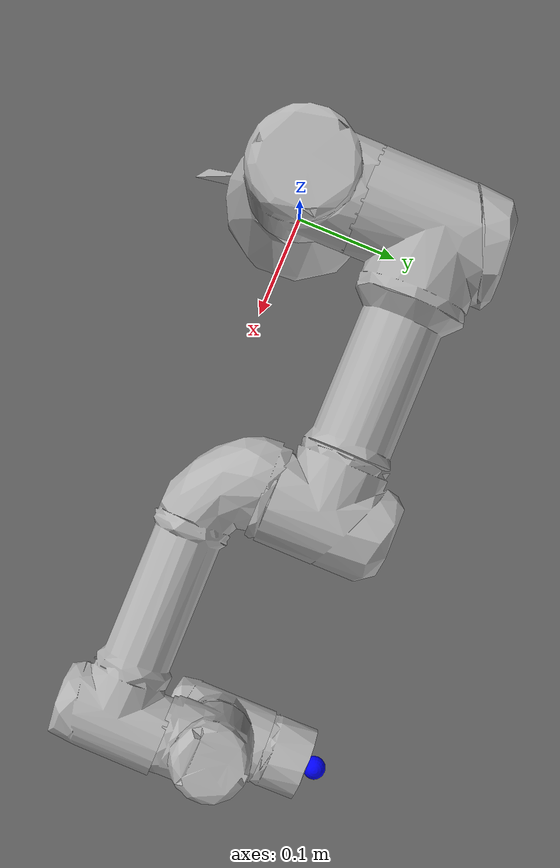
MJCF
<mujoco model="ur3_scene">

  <!-- implicitfast integrator is critical for stability with stiff actuators -->
  <option integrator="implicitfast" timestep="0.002" gravity="0 0 -9.81" />

  <compiler angle="radian" meshdir="ur_assets/meshes/ur3/collision/" eulerseq="zyx" autolimits="true" />

  <default>
    <!-- Joint defaults: armature simulates harmonic drive rotor inertia -->
    <joint limited="true" axis="0 1 0" range="-6.28319 6.28319" armature="0.1" />
    <!-- Large joints actuator: kp=2000, kv=400, max torque ±150 Nm -->
    <general gaintype="fixed" biastype="affine" ctrlrange="-6.2831 6.2831"
             gainprm="2000" biasprm="0 -2000 -400" forcerange="-150 150" />
    <geom condim="4" contype="1" conaffinity="15" friction="0.9 0.2 0.2" />
    <default class="size1">
      <!-- Wrist joints actuator: kp=500, kv=100, max torque ±28 Nm -->
      <general gainprm="500" biasprm="0 -500 -100" forcerange="-28 28" />
    </default>
    <default class="size3_limited">
      <joint range="-3.14159 3.14159" />
      <general ctrlrange="-3.1415 3.1415" />
    </default>
    <default class="visualgeom">
      <geom material="visualgeom" condim="1" contype="0" conaffinity="0" />
    </default>
  </default>

  <asset>
    <mesh name="base" content_type="model/stl" file="base.stl" />
    <mesh name="shoulder" content_type="model/stl" file="shoulder.stl" />
    <mesh name="upperarm" content_type="model/stl" file="upperarm.stl" />
    <mesh name="forearm" content_type="model/stl" file="forearm.stl" />
    <mesh name="wrist1" content_type="model/stl" file="wrist1.stl" />
    <mesh name="wrist2" content_type="model/stl" file="wrist2.stl" />
    <mesh name="wrist3" content_type="model/stl" file="wrist3.stl" />
    <texture name="texplane" type="2d" builtin="checker" rgb1=".0 .0 .0" rgb2=".8 .8 .8" width="100" height="100" />
    <material name="matplane" reflectance="0." texture="texplane" texrepeat="1 1" texuniform="true" />
    <material name="visualgeom" rgba="0.5 0.9 0.2 1" />
  </asset>

  <worldbody>
    <light directional="true" diffuse="0.4 0.4 0.4" specular="0.1 0.1 0.1" pos="0 0 5.0" dir="0 0 -1" castshadow="false" />
    <light directional="true" diffuse="0.6 0.6 0.6" specular="0.2 0.2 0.2" pos="0 0 4" dir="0 0 -1" />
    <geom name="ground" type="plane" pos="0 0 0" size="2 2 0.1" quat="1 0 0 0" material="matplane" condim="3" conaffinity="15" />

    <body name="target_visual" pos="0 0 0">
      <geom name="target_sphere" type="sphere" size="0.012" rgba="0.8 0.2 0.2 0.7" contype="0" conaffinity="0"/>
    </body>

    <camera name="fixed" pos="0 -1.5 0.8" xyaxes="1 0 0 0 0 1" />
    <camera name="track_cam" mode="targetbody" target="wrist_3_link" pos="0.8 -0.8 0.6" />

    <body name="root" pos="0 0 0.06487575362036854" quat="1 0 0 0">
      <site name="imu" size="0.01" pos="0 0 0" />
      <geom type="mesh" rgba="0.7 0.7 0.7 1" mesh="base" contype="1" conaffinity="0" density="0" group="1" class="visualgeom" />
      <geom type="mesh" rgba="0.7 0.7 0.7 1" mesh="base" />
      <body name="shoulder_link" pos="0 0 0.1519">
        <inertial pos="0 0 0" mass="2" diaginertia="0.00809316 0.00809316 0.005625" />
        <joint name="shoulder_pan_joint" pos="0 0 0" axis="0 0 1" range="-6.28319 6.28319" />
        <geom type="mesh" rgba="0.7 0.7 0.7 1" mesh="shoulder" contype="1" conaffinity="0" density="0" group="1" class="visualgeom" />
        <geom type="mesh" rgba="0.7 0.7 0.7 1" mesh="shoulder" />
        <body name="upper_arm_link" pos="0 0.1198 0" quat="0.707107 0 0.707107 0">
          <inertial pos="0 0 0.121825" mass="3.42" diaginertia="0.0217285 0.0217285 0.00961875" />
          <joint name="shoulder_lift_joint" pos="0 0 0" axis="0 1 0" range="-6.28319 6.28319" />
          <geom type="mesh" rgba="0.7 0.7 0.7 1" mesh="upperarm" contype="1" conaffinity="0" density="0" group="1" class="visualgeom" />
          <geom type="mesh" rgba="0.7 0.7 0.7 1" mesh="upperarm" />
          <body name="forearm_link" pos="0 -0.0925 0.24365">
            <inertial pos="0 0 0.106625" mass="1.26" diaginertia="0.00654681 0.00654681 0.00354375" />
            <joint name="elbow_joint" pos="0 0 0" axis="0 1 0" range="-3.14159 3.14159" />
            <geom type="mesh" rgba="0.7 0.7 0.7 1" mesh="forearm" contype="1" conaffinity="0" density="0" group="1" class="visualgeom" />
            <geom type="mesh" rgba="0.7 0.7 0.7 1" mesh="forearm" />
            <body name="wrist_1_link" pos="0 0 0.21325" quat="0.707107 0 0.707107 0">
              <inertial pos="0 0 0" quat="0.5 0.5 -0.5 0.5" mass="0.8" diaginertia="0.00225 0.002085 0.002085" />
              <joint name="wrist_1_joint" pos="0 0 0" axis="0 1 0" range="-6.28319 6.28319" />
              <geom type="mesh" rgba="0.7 0.7 0.7 1" mesh="wrist1" contype="1" conaffinity="0" density="0" group="1" class="visualgeom" />
              <geom type="mesh" rgba="0.7 0.7 0.7 1" mesh="wrist1" />
              <body name="wrist_2_link" pos="0 0.08505 0">
                <inertial pos="0 0 0" quat="0.5 0.5 -0.5 0.5" mass="0.8" diaginertia="0.00225 0.002085 0.002085" />
                <joint name="wrist_2_joint" pos="0 0 0" axis="0 0 1" range="-6.28319 6.28319" />
                <geom type="mesh" rgba="0.7 0.7 0.7 1" mesh="wrist2" contype="1" conaffinity="0" density="0" group="1" class="visualgeom" />
                <geom type="mesh" rgba="0.7 0.7 0.7 1" mesh="wrist2" />
                <body name="wrist_3_link" pos="0 0 0.08535">
                  <inertial pos="0 0 0" quat="0.5 0.5 -0.5 0.5" mass="0.35" diaginertia="0.000984375 0.000912187 0.000912187" />
                  <joint name="wrist_3_joint" pos="0 0 0" axis="0 1 0" range="-6.28319 6.28319" />
                  <geom type="mesh" rgba="0.7 0.7 0.7 1" mesh="wrist3" contype="1" conaffinity="0" density="0" group="1" class="visualgeom" />
                  <geom type="mesh" rgba="0.7 0.7 0.7 1" mesh="wrist3" />
                  <geom size="0.005 0.005 0.005" pos="0 0.0719 0" quat="0.707107 0 0 0.707107" type="box" contype="1" conaffinity="0" density="0" group="1" class="visualgeom" />
                  <geom type="box" rgba="0.5 0.5 0.5 1" size="0.005 0.005 0.005" pos="0 0.0719 0" quat="0.707107 0 0 0.707107" />

                  <site name="ee_site" pos="0 0.09 0" size="0.01" rgba="0 0 1 1"/>
                </body>
              </body>
            </body>
          </body>
        </body>
      </body>
    </body>
  </worldbody>

  <actuator>
    <!-- Large joints: shoulder + elbow (class defaults: kp=2000, kv=400, ±150 Nm) -->
    <general name="shoulder_pan"   joint="shoulder_pan_joint" />
    <general name="shoulder_lift"  joint="shoulder_lift_joint" />
    <general name="elbow"          joint="elbow_joint"         class="size3_limited" />
    <!-- Wrist joints (class size1: kp=500, kv=100, ±28 Nm) -->
    <general name="wrist_1"        joint="wrist_1_joint"       class="size1" />
    <general name="wrist_2"        joint="wrist_2_joint"       class="size1" />
    <general name="wrist_3"        joint="wrist_3_joint"       class="size1" />
  </actuator>

  <sensor>
    <actuatorpos name="shoulder_pan_joint_p" actuator="shoulder_pan" />
    <actuatorvel name="shoulder_pan_joint_v" actuator="shoulder_pan" />
    <actuatorpos name="shoulder_lift_joint_p" actuator="shoulder_lift" />
    <actuatorvel name="shoulder_lift_joint_v" actuator="shoulder_lift" />
    <actuatorpos name="elbow_joint_p" actuator="elbow" />
    <actuatorvel name="elbow_joint_v" actuator="elbow" />
    <actuatorpos name="wrist_1_joint_p" actuator="wrist_1" />
    <actuatorvel name="wrist_1_joint_v" actuator="wrist_1" />
    <actuatorpos name="wrist_2_joint_p" actuator="wrist_2" />
    <actuatorvel name="wrist_2_joint_v" actuator="wrist_2" />
    <actuatorpos name="wrist_3_joint_p" actuator="wrist_3" />
    <actuatorvel name="wrist_3_joint_v" actuator="wrist_3" />
    <framequat name="orientation" objtype="site" noise="0.001" objname="imu" />
    <gyro name="angular-velocity" site="imu" noise="0.005" cutoff="34.9" />
  </sensor>

  <keyframe>
    <key name="home" qpos="0 -1.5708 1.5708 -1.5708 -1.5708 0"
         ctrl="0 -1.5708 1.5708 -1.5708 -1.5708 0"/>
  </keyframe>
</mujoco>
